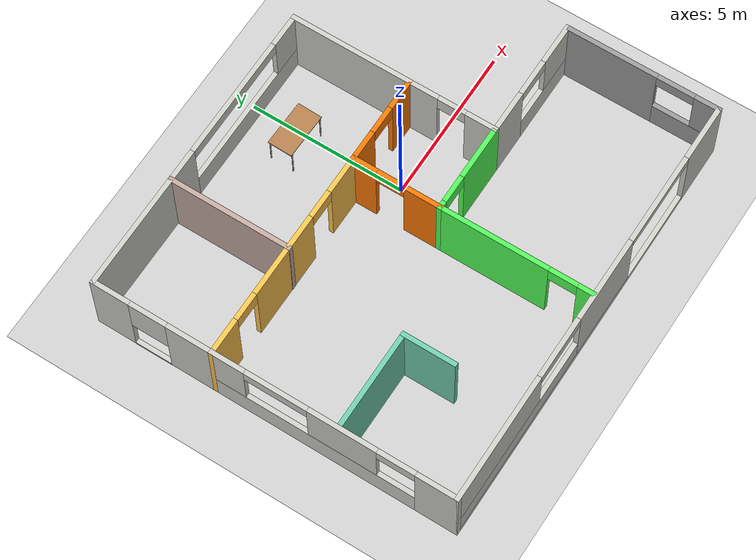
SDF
<sdf version="1.6">
 <world name="default">
  <model name="ground_plane">
   <static>1</static>
   <link name="link">
    <collision name="collision">
     <geometry><plane><normal>0 0 1</normal><size>100 100</size></plane></geometry>
     <surface>
      <contact><collide_bitmask>65535</collide_bitmask></contact>
      <friction><ode><mu>100</mu><mu2>50</mu2></ode></friction>
     </surface>
    </collision>
    <visual name="visual">
     <cast_shadows>0</cast_shadows>
     <geometry><plane><normal>0 0 1</normal><size>100 100</size></plane></geometry>
     <material>
      <script><uri>file://media/materials/scripts/gazebo.material</uri><name>Gazebo/Grey</name></script>
     </material>
    </visual>
   </link>
  </model>
  <model name="Apartment">
   <pose>-1.01508 -0.975573 0 0 -0 0</pose>
   <link name="Wall_11">
    <pose>1.52493 1.92485 0 0 -0 0</pose>
    <visual name="Wall_11_Visual_0">
     <pose>-0.9825 0 1.25 0 -0 0</pose>
     <geometry><box><size>1.035 0.15 2.5</size></box></geometry>
     <material>
      <script><uri>file://media/materials/scripts/gazebo.material</uri><name>Gazebo/Grey</name></script>
      <ambient>0.996078 0.47451 0.0196078 1</ambient>
     </material>
     <meta><layer>0</layer></meta>
    </visual>
    <collision name="Wall_11_Collision_0">
     <geometry><box><size>1.035 0.15 2.5</size></box></geometry>
     <pose>-0.9825 0 1.25 0 -0 0</pose>
    </collision>
    <visual name="Wall_11_Visual_1">
     <pose>0.9675 0 1.25 0 -0 0</pose>
     <geometry><box><size>1.065 0.15 2.5</size></box></geometry>
     <material>
      <script><uri>file://media/materials/scripts/gazebo.material</uri><name>Gazebo/Grey</name></script>
      <ambient>0.996078 0.47451 0.0196078 1</ambient>
     </material>
     <meta><layer>0</layer></meta>
    </visual>
    <collision name="Wall_11_Collision_1">
     <geometry><box><size>1.065 0.15 2.5</size></box></geometry>
     <pose>0.9675 0 1.25 0 -0 0</pose>
    </collision>
    <visual name="Wall_11_Visual_2">
     <pose>-0.015 0 2.25 0 -0 0</pose>
     <geometry><box><size>0.9 0.15 0.5</size></box></geometry>
     <material>
      <script><uri>file://media/materials/scripts/gazebo.material</uri><name>Gazebo/Grey</name></script>
      <ambient>0.996078 0.47451 0.0196078 1</ambient>
     </material>
     <meta><layer>0</layer></meta>
    </visual>
    <collision name="Wall_11_Collision_2">
     <geometry><box><size>0.9 0.15 0.5</size></box></geometry>
     <pose>-0.015 0 2.25 0 -0 0</pose>
    </collision>
   </link>
   <link name="Wall_12">
    <pose>2.94993 0.519847 0 0 0 -1.5708</pose>
    <visual name="Wall_12_Visual_0">
     <pose>-0.962535 0 1.25 0 -0 0</pose>
     <geometry><box><size>1.03493 0.15 2.5</size></box></geometry>
     <material>
      <script><uri>file://media/materials/scripts/gazebo.material</uri><name>Gazebo/CeilingTiled</name></script>
      <ambient>1 1 1 1</ambient>
     </material>
     <meta><layer>0</layer></meta>
    </visual>
    <collision name="Wall_12_Collision_0">
     <geometry><box><size>1.03493 0.15 2.5</size></box></geometry>
     <pose>-0.962535 0 1.25 0 -0 0</pose>
    </collision>
    <visual name="Wall_12_Visual_1">
     <pose>0.967465 0 1.25 0 -0 0</pose>
     <geometry><box><size>1.02507 0.15 2.5</size></box></geometry>
     <material>
      <script><uri>file://media/materials/scripts/gazebo.material</uri><name>Gazebo/CeilingTiled</name></script>
      <ambient>1 1 1 1</ambient>
     </material>
     <meta><layer>0</layer></meta>
    </visual>
    <collision name="Wall_12_Collision_1">
     <geometry><box><size>1.02507 0.15 2.5</size></box></geometry>
     <pose>0.967465 0 1.25 0 -0 0</pose>
    </collision>
    <visual name="Wall_12_Visual_2">
     <pose>0.00493 0 2.25 0 -0 0</pose>
     <geometry><box><size>0.9 0.15 0.5</size></box></geometry>
     <material>
      <script><uri>file://media/materials/scripts/gazebo.material</uri><name>Gazebo/CeilingTiled</name></script>
      <ambient>1 1 1 1</ambient>
     </material>
     <meta><layer>0</layer></meta>
    </visual>
    <collision name="Wall_12_Collision_2">
     <geometry><box><size>0.9 0.15 0.5</size></box></geometry>
     <pose>0.00493 0 2.25 0 -0 0</pose>
    </collision>
   </link>
   <link name="Wall_13">
    <pose>1.52493 -0.885153 0 0 -0 3.14159</pose>
    <visual name="Wall_13_Visual_0">
     <pose>-0.592536 0 1.25 0 -0 0</pose>
     <geometry><box><size>1.81507 0.15 2.5</size></box></geometry>
     <material>
      <script><uri>file://media/materials/scripts/gazebo.material</uri><name>Gazebo/Grey</name></script>
      <ambient>0.321569 1 0.345098 1</ambient>
     </material>
     <meta><layer>0</layer></meta>
    </visual>
    <collision name="Wall_13_Collision_0">
     <geometry><box><size>1.81507 0.15 2.5</size></box></geometry>
     <pose>-0.592536 0 1.25 0 -0 0</pose>
    </collision>
    <visual name="Wall_13_Visual_1">
     <pose>1.35754 0 1.25 0 -0 0</pose>
     <geometry><box><size>0.285073 0.15 2.5</size></box></geometry>
     <material>
      <script><uri>file://media/materials/scripts/gazebo.material</uri><name>Gazebo/Grey</name></script>
      <ambient>0.321569 1 0.345098 1</ambient>
     </material>
     <meta><layer>0</layer></meta>
    </visual>
    <collision name="Wall_13_Collision_1">
     <geometry><box><size>0.285073 0.15 2.5</size></box></geometry>
     <pose>1.35754 0 1.25 0 -0 0</pose>
    </collision>
    <visual name="Wall_13_Visual_2">
     <pose>0.765 0 2.25 0 -0 0</pose>
     <geometry><box><size>0.9 0.15 0.5</size></box></geometry>
     <material>
      <script><uri>file://media/materials/scripts/gazebo.material</uri><name>Gazebo/Grey</name></script>
      <ambient>0.321569 1 0.345098 1</ambient>
     </material>
     <meta><layer>0</layer></meta>
    </visual>
    <collision name="Wall_13_Collision_2">
     <geometry><box><size>0.9 0.15 0.5</size></box></geometry>
     <pose>0.765 0 2.25 0 -0 0</pose>
    </collision>
   </link>
   <link name="Wall_14">
    <pose>0.099928 0.519847 0 0 -0 1.5708</pose>
    <visual name="Wall_14_Visual_0">
     <pose>-0.8739 0 1.25 0 -0 0</pose>
     <geometry><box><size>1.21261 0.15 2.5</size></box></geometry>
     <material>
      <script><uri>file://media/materials/scripts/gazebo.material</uri><name>Gazebo/Grey</name></script>
      <ambient>0.996078 0.47451 0.0196078 1</ambient>
     </material>
     <meta><layer>0</layer></meta>
    </visual>
    <collision name="Wall_14_Collision_0">
     <geometry><box><size>1.21261 0.15 2.5</size></box></geometry>
     <pose>-0.8739 0 1.25 0 -0 0</pose>
    </collision>
    <visual name="Wall_14_Visual_1">
     <pose>1.0563 0 1.25 0 -0 0</pose>
     <geometry><box><size>0.847799 0.15 2.5</size></box></geometry>
     <material>
      <script><uri>file://media/materials/scripts/gazebo.material</uri><name>Gazebo/Grey</name></script>
      <ambient>0.996078 0.47451 0.0196078 1</ambient>
     </material>
     <meta><layer>0</layer></meta>
    </visual>
    <collision name="Wall_14_Collision_1">
     <geometry><box><size>0.847799 0.15 2.5</size></box></geometry>
     <pose>1.0563 0 1.25 0 -0 0</pose>
    </collision>
    <visual name="Wall_14_Visual_2">
     <pose>0.182404 0 2.25 0 -0 0</pose>
     <geometry><box><size>0.9 0.15 0.5</size></box></geometry>
     <material>
      <script><uri>file://media/materials/scripts/gazebo.material</uri><name>Gazebo/Grey</name></script>
      <ambient>0.996078 0.47451 0.0196078 1</ambient>
     </material>
     <meta><layer>0</layer></meta>
    </visual>
    <collision name="Wall_14_Collision_2">
     <geometry><box><size>0.9 0.15 0.5</size></box></geometry>
     <pose>0.182404 0 2.25 0 -0 0</pose>
    </collision>
   </link>
   <link name="Wall_16">
    <pose>4.87493 -0.885153 0 0 -0 0</pose>
    <visual name="Wall_16_Visual_0">
     <pose>-1.29069 0 1.25 0 -0 0</pose>
     <geometry><box><size>1.41862 0.15 2.5</size></box></geometry>
     <material>
      <script><uri>file://media/materials/scripts/gazebo.material</uri><name>Gazebo/CeilingTiled</name></script>
      <ambient>0.760784 0.662745 0.627451 1</ambient>
     </material>
     <meta><layer>0</layer></meta>
    </visual>
    <collision name="Wall_16_Collision_0">
     <geometry><box><size>1.41862 0.15 2.5</size></box></geometry>
     <pose>-1.29069 0 1.25 0 -0 0</pose>
    </collision>
    <visual name="Wall_16_Visual_1">
     <pose>0.709309 0 0.45 0 -0 0</pose>
     <geometry><box><size>2.58138 0.15 0.9</size></box></geometry>
     <material>
      <script><uri>file://media/materials/scripts/gazebo.material</uri><name>Gazebo/CeilingTiled</name></script>
      <ambient>0.760784 0.662745 0.627451 1</ambient>
     </material>
     <meta><layer>0</layer></meta>
    </visual>
    <collision name="Wall_16_Collision_1">
     <geometry><box><size>2.58138 0.15 0.9</size></box></geometry>
     <pose>0.709309 0 0.45 0 -0 0</pose>
    </collision>
    <visual name="Wall_16_Visual_2">
     <pose>1.30931 0 1.7 0 -0 0</pose>
     <geometry><box><size>1.38138 0.15 1.6</size></box></geometry>
     <material>
      <script><uri>file://media/materials/scripts/gazebo.material</uri><name>Gazebo/CeilingTiled</name></script>
      <ambient>0.760784 0.662745 0.627451 1</ambient>
     </material>
     <meta><layer>0</layer></meta>
    </visual>
    <collision name="Wall_16_Collision_2">
     <geometry><box><size>1.38138 0.15 1.6</size></box></geometry>
     <pose>1.30931 0 1.7 0 -0 0</pose>
    </collision>
    <visual name="Wall_16_Visual_3">
     <pose>0.018619 0 2.3 0 -0 0</pose>
     <geometry><box><size>1.2 0.15 0.4</size></box></geometry>
     <material>
      <script><uri>file://media/materials/scripts/gazebo.material</uri><name>Gazebo/CeilingTiled</name></script>
      <ambient>0.760784 0.662745 0.627451 1</ambient>
     </material>
     <meta><layer>0</layer></meta>
    </visual>
    <collision name="Wall_16_Collision_3">
     <geometry><box><size>1.2 0.15 0.4</size></box></geometry>
     <pose>0.018619 0 2.3 0 -0 0</pose>
    </collision>
   </link>
   <link name="Wall_18">
    <pose>6.80018 -3.33 0 0 0 -1.57069</pose>
    <visual name="Wall_18_Visual_0">
     <pose>-1.01487 0 1.25 0 -0 0</pose>
     <geometry><box><size>3.00995 0.15 2.5</size></box></geometry>
     <material>
      <script><uri>file://media/materials/scripts/gazebo.material</uri><name>Gazebo/Grey</name></script>
      <ambient>1 1 1 1</ambient>
     </material>
     <meta><layer>0</layer></meta>
    </visual>
    <collision name="Wall_18_Collision_0">
     <geometry><box><size>3.00995 0.15 2.5</size></box></geometry>
     <pose>-1.01487 0 1.25 0 -0 0</pose>
    </collision>
    <visual name="Wall_18_Visual_1">
     <pose>1.50497 0 0.45 0 -0 0</pose>
     <geometry><box><size>2.02974 0.15 0.9</size></box></geometry>
     <material>
      <script><uri>file://media/materials/scripts/gazebo.material</uri><name>Gazebo/Grey</name></script>
      <ambient>1 1 1 1</ambient>
     </material>
     <meta><layer>0</layer></meta>
    </visual>
    <collision name="Wall_18_Collision_1">
     <geometry><box><size>2.02974 0.15 0.9</size></box></geometry>
     <pose>1.50497 0 0.45 0 -0 0</pose>
    </collision>
    <visual name="Wall_18_Visual_2">
     <pose>2.10497 0 1.7 0 -0 0</pose>
     <geometry><box><size>0.829741 0.15 1.6</size></box></geometry>
     <material>
      <script><uri>file://media/materials/scripts/gazebo.material</uri><name>Gazebo/Grey</name></script>
      <ambient>1 1 1 1</ambient>
     </material>
     <meta><layer>0</layer></meta>
    </visual>
    <collision name="Wall_18_Collision_2">
     <geometry><box><size>0.829741 0.15 1.6</size></box></geometry>
     <pose>2.10497 0 1.7 0 -0 0</pose>
    </collision>
    <visual name="Wall_18_Visual_3">
     <pose>1.0901 0 2.3 0 -0 0</pose>
     <geometry><box><size>1.2 0.15 0.4</size></box></geometry>
     <material>
      <script><uri>file://media/materials/scripts/gazebo.material</uri><name>Gazebo/Grey</name></script>
      <ambient>1 1 1 1</ambient>
     </material>
     <meta><layer>0</layer></meta>
    </visual>
    <collision name="Wall_18_Collision_3">
     <geometry><box><size>1.2 0.15 0.4</size></box></geometry>
     <pose>1.0901 0 2.3 0 -0 0</pose>
    </collision>
   </link>
   <link name="Wall_19">
    <pose>0.000427 -5.77484 0 0 -0 3.14159</pose>
    <visual name="Wall_19_Visual_0">
     <pose>-5.94597 0 1.25 0 -0 0</pose>
     <geometry><box><size>1.85806 0.15 2.5</size></box></geometry>
     <material>
      <script><uri>file://media/materials/scripts/gazebo.material</uri><name>Gazebo/CeilingTiled</name></script>
      <ambient>1 1 1 1</ambient>
     </material>
     <meta><layer>0</layer></meta>
    </visual>
    <collision name="Wall_19_Collision_0">
     <geometry><box><size>1.85806 0.15 2.5</size></box></geometry>
     <pose>-5.94597 0 1.25 0 -0 0</pose>
    </collision>
    <visual name="Wall_19_Visual_1">
     <pose>0.929031 0 0.1 0 -0 0</pose>
     <geometry><box><size>11.8919 0.15 0.2</size></box></geometry>
     <material>
      <script><uri>file://media/materials/scripts/gazebo.material</uri><name>Gazebo/CeilingTiled</name></script>
      <ambient>1 1 1 1</ambient>
     </material>
     <meta><layer>0</layer></meta>
    </visual>
    <collision name="Wall_19_Collision_1">
     <geometry><box><size>11.8919 0.15 0.2</size></box></geometry>
     <pose>0.929031 0 0.1 0 -0 0</pose>
    </collision>
    <visual name="Wall_19_Visual_2">
     <pose>-0.643119 0 1.35 0 -0 0</pose>
     <geometry><box><size>2.74764 0.15 2.3</size></box></geometry>
     <material>
      <script><uri>file://media/materials/scripts/gazebo.material</uri><name>Gazebo/CeilingTiled</name></script>
      <ambient>1 1 1 1</ambient>
     </material>
     <meta><layer>0</layer></meta>
    </visual>
    <collision name="Wall_19_Collision_2">
     <geometry><box><size>2.74764 0.15 2.3</size></box></geometry>
     <pose>-0.643119 0 1.35 0 -0 0</pose>
    </collision>
    <visual name="Wall_19_Visual_3">
     <pose>3.80285 0 0.55 0 -0 0</pose>
     <geometry><box><size>6.1443 0.15 0.7</size></box></geometry>
     <material>
      <script><uri>file://media/materials/scripts/gazebo.material</uri><name>Gazebo/CeilingTiled</name></script>
      <ambient>1 1 1 1</ambient>
     </material>
     <meta><layer>0</layer></meta>
    </visual>
    <collision name="Wall_19_Collision_3">
     <geometry><box><size>6.1443 0.15 0.7</size></box></geometry>
     <pose>3.80285 0 0.55 0 -0 0</pose>
    </collision>
    <visual name="Wall_19_Visual_4">
     <pose>4.80285 0 1.7 0 -0 0</pose>
     <geometry><box><size>4.1443 0.15 1.6</size></box></geometry>
     <material>
      <script><uri>file://media/materials/scripts/gazebo.material</uri><name>Gazebo/CeilingTiled</name></script>
      <ambient>1 1 1 1</ambient>
     </material>
     <meta><layer>0</layer></meta>
    </visual>
    <collision name="Wall_19_Collision_4">
     <geometry><box><size>4.1443 0.15 1.6</size></box></geometry>
     <pose>4.80285 0 1.7 0 -0 0</pose>
    </collision>
    <visual name="Wall_19_Visual_5">
     <pose>1.7307 0 2.3 0 -0 0</pose>
     <geometry><box><size>2 0.15 0.4</size></box></geometry>
     <material>
      <script><uri>file://media/materials/scripts/gazebo.material</uri><name>Gazebo/CeilingTiled</name></script>
      <ambient>1 1 1 1</ambient>
     </material>
     <meta><layer>0</layer></meta>
    </visual>
    <collision name="Wall_19_Collision_5">
     <geometry><box><size>2 0.15 0.4</size></box></geometry>
     <pose>1.7307 0 2.3 0 -0 0</pose>
    </collision>
    <visual name="Wall_19_Visual_6">
     <pose>-3.51694 0 2.35 0 -0 0</pose>
     <geometry><box><size>3 0.15 0.3</size></box></geometry>
     <material>
      <script><uri>file://media/materials/scripts/gazebo.material</uri><name>Gazebo/CeilingTiled</name></script>
      <ambient>1 1 1 1</ambient>
     </material>
     <meta><layer>0</layer></meta>
    </visual>
    <collision name="Wall_19_Collision_6">
     <geometry><box><size>3 0.15 0.3</size></box></geometry>
     <pose>-3.51694 0 2.35 0 -0 0</pose>
    </collision>
   </link>
   <link name="Wall_20">
    <pose>-6.79982 -1.925 0 0 -0 1.57086</pose>
    <visual name="Wall_20_Visual_0">
     <pose>-3.25093 0 1.25 0 -0 0</pose>
     <geometry><box><size>1.34782 0.15 2.5</size></box></geometry>
     <material>
      <script><uri>file://media/materials/scripts/gazebo.material</uri><name>Gazebo/CeilingTiled</name></script>
      <ambient>1 1 1 1</ambient>
     </material>
     <meta><layer>0</layer></meta>
    </visual>
    <collision name="Wall_20_Collision_0">
     <geometry><box><size>1.34782 0.15 2.5</size></box></geometry>
     <pose>-3.25093 0 1.25 0 -0 0</pose>
    </collision>
    <visual name="Wall_20_Visual_1">
     <pose>0.67391 0 0.45 0 -0 0</pose>
     <geometry><box><size>6.50187 0.15 0.9</size></box></geometry>
     <material>
      <script><uri>file://media/materials/scripts/gazebo.material</uri><name>Gazebo/CeilingTiled</name></script>
      <ambient>1 1 1 1</ambient>
     </material>
     <meta><layer>0</layer></meta>
    </visual>
    <collision name="Wall_20_Collision_1">
     <geometry><box><size>6.50187 0.15 0.9</size></box></geometry>
     <pose>0.67391 0 0.45 0 -0 0</pose>
    </collision>
    <visual name="Wall_20_Visual_2">
     <pose>-0.288611 0 1.7 0 -0 0</pose>
     <geometry><box><size>2.17682 0.15 1.6</size></box></geometry>
     <material>
      <script><uri>file://media/materials/scripts/gazebo.material</uri><name>Gazebo/CeilingTiled</name></script>
      <ambient>1 1 1 1</ambient>
     </material>
     <meta><layer>0</layer></meta>
    </visual>
    <collision name="Wall_20_Collision_2">
     <geometry><box><size>2.17682 0.15 1.6</size></box></geometry>
     <pose>-0.288611 0 1.7 0 -0 0</pose>
    </collision>
    <visual name="Wall_20_Visual_3">
     <pose>3.36232 0 1.7 0 -0 0</pose>
     <geometry><box><size>1.12504 0.15 1.6</size></box></geometry>
     <material>
      <script><uri>file://media/materials/scripts/gazebo.material</uri><name>Gazebo/CeilingTiled</name></script>
      <ambient>1 1 1 1</ambient>
     </material>
     <meta><layer>0</layer></meta>
    </visual>
    <collision name="Wall_20_Collision_3">
     <geometry><box><size>1.12504 0.15 1.6</size></box></geometry>
     <pose>3.36232 0 1.7 0 -0 0</pose>
    </collision>
    <visual name="Wall_20_Visual_4">
     <pose>-1.97702 0 2.3 0 -0 0</pose>
     <geometry><box><size>1.2 0.15 0.4</size></box></geometry>
     <material>
      <script><uri>file://media/materials/scripts/gazebo.material</uri><name>Gazebo/CeilingTiled</name></script>
      <ambient>1 1 1 1</ambient>
     </material>
     <meta><layer>0</layer></meta>
    </visual>
    <collision name="Wall_20_Collision_4">
     <geometry><box><size>1.2 0.15 0.4</size></box></geometry>
     <pose>-1.97702 0 2.3 0 -0 0</pose>
    </collision>
    <visual name="Wall_20_Visual_5">
     <pose>1.7998 0 2.3 0 -0 0</pose>
     <geometry><box><size>2 0.15 0.4</size></box></geometry>
     <material>
      <script><uri>file://media/materials/scripts/gazebo.material</uri><name>Gazebo/CeilingTiled</name></script>
      <ambient>1 1 1 1</ambient>
     </material>
     <meta><layer>0</layer></meta>
    </visual>
    <collision name="Wall_20_Collision_5">
     <geometry><box><size>2 0.15 0.4</size></box></geometry>
     <pose>1.7998 0 2.3 0 -0 0</pose>
    </collision>
   </link>
   <link name="Wall_21">
    <pose>-3.35007 1.92485 0 0 -0 0</pose>
    <visual name="Wall_21_Visual_0">
     <pose>-2.92004 0 1.25 0 -0 0</pose>
     <geometry><box><size>1.21065 0.15 2.5</size></box></geometry>
     <material>
      <script><uri>file://media/materials/scripts/gazebo.material</uri><name>Gazebo/Grey</name></script>
      <ambient>1 0.764706 0.305882 1</ambient>
     </material>
     <meta><layer>0</layer></meta>
    </visual>
    <collision name="Wall_21_Collision_0">
     <geometry><box><size>1.21065 0.15 2.5</size></box></geometry>
     <pose>-2.92004 0 1.25 0 -0 0</pose>
    </collision>
    <visual name="Wall_21_Visual_1">
     <pose>-0.045749 0 1.25 0 -0 0</pose>
     <geometry><box><size>2.73793 0.15 2.5</size></box></geometry>
     <material>
      <script><uri>file://media/materials/scripts/gazebo.material</uri><name>Gazebo/Grey</name></script>
      <ambient>1 0.764706 0.305882 1</ambient>
     </material>
     <meta><layer>0</layer></meta>
    </visual>
    <collision name="Wall_21_Collision_1">
     <geometry><box><size>2.73793 0.15 2.5</size></box></geometry>
     <pose>-0.045749 0 1.25 0 -0 0</pose>
    </collision>
    <visual name="Wall_21_Visual_2">
     <pose>2.87429 0 1.25 0 -0 0</pose>
     <geometry><box><size>1.30214 0.15 2.5</size></box></geometry>
     <material>
      <script><uri>file://media/materials/scripts/gazebo.material</uri><name>Gazebo/Grey</name></script>
      <ambient>1 0.764706 0.305882 1</ambient>
     </material>
     <meta><layer>0</layer></meta>
    </visual>
    <collision name="Wall_21_Collision_2">
     <geometry><box><size>1.30214 0.15 2.5</size></box></geometry>
     <pose>2.87429 0 1.25 0 -0 0</pose>
    </collision>
    <visual name="Wall_21_Visual_3">
     <pose>-1.86471 0 2.25 0 -0 0</pose>
     <geometry><box><size>0.9 0.15 0.5</size></box></geometry>
     <material>
      <script><uri>file://media/materials/scripts/gazebo.material</uri><name>Gazebo/Grey</name></script>
      <ambient>1 0.764706 0.305882 1</ambient>
     </material>
     <meta><layer>0</layer></meta>
    </visual>
    <collision name="Wall_21_Collision_3">
     <geometry><box><size>0.9 0.15 0.5</size></box></geometry>
     <pose>-1.86471 0 2.25 0 -0 0</pose>
    </collision>
    <visual name="Wall_21_Visual_4">
     <pose>1.77322 0 2.25 0 -0 0</pose>
     <geometry><box><size>0.9 0.15 0.5</size></box></geometry>
     <material>
      <script><uri>file://media/materials/scripts/gazebo.material</uri><name>Gazebo/Grey</name></script>
      <ambient>1 0.764706 0.305882 1</ambient>
     </material>
     <meta><layer>0</layer></meta>
    </visual>
    <collision name="Wall_21_Collision_4">
     <geometry><box><size>0.9 0.15 0.5</size></box></geometry>
     <pose>1.77322 0 2.25 0 -0 0</pose>
    </collision>
   </link>
   <link name="Wall_23">
    <pose>-6.80007 3.84985 0 0 -0 1.5708</pose>
    <visual name="Wall_23_Visual_0">
     <pose>-1.23081 0 1.25 0 -0 0</pose>
     <geometry><box><size>1.53838 0.15 2.5</size></box></geometry>
     <material>
      <script><uri>file://media/materials/scripts/gazebo.material</uri><name>Gazebo/CeilingTiled</name></script>
      <ambient>1 1 1 1</ambient>
     </material>
     <meta><layer>0</layer></meta>
    </visual>
    <collision name="Wall_23_Collision_0">
     <geometry><box><size>1.53838 0.15 2.5</size></box></geometry>
     <pose>-1.23081 0 1.25 0 -0 0</pose>
    </collision>
    <visual name="Wall_23_Visual_1">
     <pose>1.36919 0 1.25 0 -0 0</pose>
     <geometry><box><size>1.26162 0.15 2.5</size></box></geometry>
     <material>
      <script><uri>file://media/materials/scripts/gazebo.material</uri><name>Gazebo/CeilingTiled</name></script>
      <ambient>1 1 1 1</ambient>
     </material>
     <meta><layer>0</layer></meta>
    </visual>
    <collision name="Wall_23_Collision_1">
     <geometry><box><size>1.26162 0.15 2.5</size></box></geometry>
     <pose>1.36919 0 1.25 0 -0 0</pose>
    </collision>
    <visual name="Wall_23_Visual_2">
     <pose>0.138378 0 0 0 -0 0</pose>
     <geometry><box><size>1.2 0.15 0.1</size></box></geometry>
     <material>
      <script><uri>file://media/materials/scripts/gazebo.material</uri><name>Gazebo/CeilingTiled</name></script>
      <ambient>1 1 1 1</ambient>
     </material>
     <meta><layer>0</layer></meta>
    </visual>
    <collision name="Wall_23_Collision_2">
     <geometry><box><size>1.2 0.15 0.1</size></box></geometry>
     <pose>0.138378 0 0 0 -0 0</pose>
    </collision>
    <visual name="Wall_23_Visual_3">
     <pose>0.138378 0 1.85 0 -0 0</pose>
     <geometry><box><size>1.2 0.15 1.3</size></box></geometry>
     <material>
      <script><uri>file://media/materials/scripts/gazebo.material</uri><name>Gazebo/CeilingTiled</name></script>
      <ambient>1 1 1 1</ambient>
     </material>
     <meta><layer>0</layer></meta>
    </visual>
    <collision name="Wall_23_Collision_3">
     <geometry><box><size>1.2 0.15 1.3</size></box></geometry>
     <pose>0.138378 0 1.85 0 -0 0</pose>
    </collision>
   </link>
   <link name="Wall_24">
    <pose>-1.92507 5.77485 0 0 -0 0</pose>
    <visual name="Wall_24_Visual_0">
     <pose>-2.56096 0 1.25 0 -0 0</pose>
     <geometry><box><size>4.77807 0.15 2.5</size></box></geometry>
     <material>
      <script><uri>file://media/materials/scripts/gazebo.material</uri><name>Gazebo/CeilingTiled</name></script>
      <ambient>1 1 1 1</ambient>
     </material>
     <meta><layer>0</layer></meta>
    </visual>
    <collision name="Wall_24_Collision_0">
     <geometry><box><size>4.77807 0.15 2.5</size></box></geometry>
     <pose>-2.56096 0 1.25 0 -0 0</pose>
    </collision>
    <visual name="Wall_24_Visual_1">
     <pose>2.38903 0 0.45 0 -0 0</pose>
     <geometry><box><size>5.12193 0.15 0.9</size></box></geometry>
     <material>
      <script><uri>file://media/materials/scripts/gazebo.material</uri><name>Gazebo/CeilingTiled</name></script>
      <ambient>1 1 1 1</ambient>
     </material>
     <meta><layer>0</layer></meta>
    </visual>
    <collision name="Wall_24_Collision_1">
     <geometry><box><size>5.12193 0.15 0.9</size></box></geometry>
     <pose>2.38903 0 0.45 0 -0 0</pose>
    </collision>
    <visual name="Wall_24_Visual_2">
     <pose>4.38903 0 1.7 0 -0 0</pose>
     <geometry><box><size>1.12193 0.15 1.6</size></box></geometry>
     <material>
      <script><uri>file://media/materials/scripts/gazebo.material</uri><name>Gazebo/CeilingTiled</name></script>
      <ambient>1 1 1 1</ambient>
     </material>
     <meta><layer>0</layer></meta>
    </visual>
    <collision name="Wall_24_Collision_2">
     <geometry><box><size>1.12193 0.15 1.6</size></box></geometry>
     <pose>4.38903 0 1.7 0 -0 0</pose>
    </collision>
    <visual name="Wall_24_Visual_3">
     <pose>1.82807 0 2.3 0 -0 0</pose>
     <geometry><box><size>4 0.15 0.4</size></box></geometry>
     <material>
      <script><uri>file://media/materials/scripts/gazebo.material</uri><name>Gazebo/CeilingTiled</name></script>
      <ambient>1 1 1 1</ambient>
     </material>
     <meta><layer>0</layer></meta>
    </visual>
    <collision name="Wall_24_Collision_3">
     <geometry><box><size>4 0.15 0.4</size></box></geometry>
     <pose>1.82807 0 2.3 0 -0 0</pose>
    </collision>
   </link>
   <link name="Wall_25">
    <collision name="Wall_25_Collision">
     <geometry><box><size>3.99969 0.15 2.5</size></box></geometry>
     <pose>0 0 1.25 0 -0 0</pose>
    </collision>
    <visual name="Wall_25_Visual">
     <pose>0 0 1.25 0 -0 0</pose>
     <geometry><box><size>3.99969 0.15 2.5</size></box></geometry>
     <material>
      <script><uri>file://media/materials/scripts/gazebo.material</uri><name>Gazebo/CeilingTiled</name></script>
      <ambient>1 1 1 1</ambient>
     </material>
     <meta><layer>0</layer></meta>
    </visual>
    <pose>2.94993 3.84985 0 0 0 -1.5708</pose>
   </link>
   <link name="Wall_27">
    <collision name="Wall_27_Collision">
     <geometry><box><size>4 0.15 2.5</size></box></geometry>
     <pose>0 0 1.25 0 -0 0</pose>
    </collision>
    <visual name="Wall_27_Visual">
     <pose>0 0 1.25 0 -0 0</pose>
     <geometry><box><size>4 0.15 2.5</size></box></geometry>
     <material>
      <script><uri>file://media/materials/scripts/gazebo.material</uri><name>Gazebo/Grey</name></script>
      <ambient>0.760784 0.662745 0.627451 1</ambient>
     </material>
     <meta><layer>0</layer></meta>
    </visual>
    <pose>-3.13347 3.83972 0 0 -0 1.5708</pose>
   </link>
   <link name="Wall_31">
    <pose>0.099928 -3.31015 0 0 0 -1.5708</pose>
    <visual name="Wall_31_Visual_0">
     <pose>-0.723829 0 1.25 0 -0 0</pose>
     <geometry><box><size>3.55234 0.15 2.5</size></box></geometry>
     <material>
      <script><uri>file://media/materials/scripts/gazebo.material</uri><name>Gazebo/Grey</name></script>
      <ambient>0.321569 1 0.345098 1</ambient>
     </material>
     <meta><layer>0</layer></meta>
    </visual>
    <collision name="Wall_31_Collision_0">
     <geometry><box><size>3.55234 0.15 2.5</size></box></geometry>
     <pose>-0.723829 0 1.25 0 -0 0</pose>
    </collision>
    <visual name="Wall_31_Visual_1">
     <pose>2.22617 0 1.25 0 -0 0</pose>
     <geometry><box><size>0.547658 0.15 2.5</size></box></geometry>
     <material>
      <script><uri>file://media/materials/scripts/gazebo.material</uri><name>Gazebo/Grey</name></script>
      <ambient>0.321569 1 0.345098 1</ambient>
     </material>
     <meta><layer>0</layer></meta>
    </visual>
    <collision name="Wall_31_Collision_1">
     <geometry><box><size>0.547658 0.15 2.5</size></box></geometry>
     <pose>2.22617 0 1.25 0 -0 0</pose>
    </collision>
    <visual name="Wall_31_Visual_2">
     <pose>1.50234 0 2.25 0 -0 0</pose>
     <geometry><box><size>0.9 0.15 0.5</size></box></geometry>
     <material>
      <script><uri>file://media/materials/scripts/gazebo.material</uri><name>Gazebo/Grey</name></script>
      <ambient>0.321569 1 0.345098 1</ambient>
     </material>
     <meta><layer>0</layer></meta>
    </visual>
    <collision name="Wall_31_Collision_2">
     <geometry><box><size>0.9 0.15 0.5</size></box></geometry>
     <pose>1.50234 0 2.25 0 -0 0</pose>
    </collision>
   </link>
   <link name="Wall_35">
    <collision name="Wall_35_Collision">
     <geometry><box><size>3.25 0.15 2.5</size></box></geometry>
     <pose>0 0 1.25 0 -0 0</pose>
    </collision>
    <visual name="Wall_35_Visual">
     <pose>0 0 1.25 0 -0 0</pose>
     <geometry><box><size>3.25 0.15 2.5</size></box></geometry>
     <material>
      <script><uri>file://media/materials/scripts/gazebo.material</uri><name>Gazebo/Grey</name></script>
      <ambient>0.435294 0.796078 0.67451 1</ambient>
     </material>
     <meta><layer>0</layer></meta>
    </visual>
    <pose>-5.17735 -2.08457 0 0 -0 0</pose>
   </link>
   <link name="Wall_36">
    <collision name="Wall_36_Collision">
     <geometry><box><size>1.75 0.15 2.5</size></box></geometry>
     <pose>0 0 1.25 0 -0 0</pose>
    </collision>
    <visual name="Wall_36_Visual">
     <pose>0 0 1.25 0 -0 0</pose>
     <geometry><box><size>1.75 0.15 2.5</size></box></geometry>
     <material>
      <script><uri>file://media/materials/scripts/gazebo.material</uri><name>Gazebo/Grey</name></script>
      <ambient>0.435294 0.796078 0.67451 1</ambient>
     </material>
     <meta><layer>0</layer></meta>
    </visual>
    <pose>-3.62735 -2.88457 0 0 0 -1.5708</pose>
   </link>
   <static>1</static>
  </model>
  <model name="table_clone">
   <static>1</static>
   <link name="link">
    <collision name="surface">
     <pose>0 0 1 0 -0 0</pose>
     <geometry><box><size>1.5 0.8 0.03</size></box></geometry>
     <surface><friction><ode><mu>0.6</mu><mu2>0.6</mu2></ode></friction></surface>
    </collision>
    <visual name="visual1">
     <pose>0 0 1 0 -0 0</pose>
     <geometry><box><size>1.5 0.8 0.03</size></box></geometry>
     <material>
      <script><uri>file://media/materials/scripts/gazebo.material</uri><name>Gazebo/Wood</name></script>
     </material>
    </visual>
    <collision name="front_left_leg">
     <pose>0.68 0.38 0.5 0 -0 0</pose>
     <geometry><cylinder><radius>0.02</radius><length>1</length></cylinder></geometry>
    </collision>
    <visual name="front_left_leg">
     <pose>0.68 0.38 0.5 0 -0 0</pose>
     <geometry><cylinder><radius>0.02</radius><length>1</length></cylinder></geometry>
     <material>
      <script><uri>file://media/materials/scripts/gazebo.material</uri><name>Gazebo/Grey</name></script>
     </material>
    </visual>
    <collision name="front_right_leg">
     <pose>0.68 -0.38 0.5 0 -0 0</pose>
     <geometry><cylinder><radius>0.02</radius><length>1</length></cylinder></geometry>
    </collision>
    <visual name="front_right_leg">
     <pose>0.68 -0.38 0.5 0 -0 0</pose>
     <geometry><cylinder><radius>0.02</radius><length>1</length></cylinder></geometry>
     <material>
      <script><uri>file://media/materials/scripts/gazebo.material</uri><name>Gazebo/Grey</name></script>
     </material>
    </visual>
    <collision name="back_right_leg">
     <pose>-0.68 -0.38 0.5 0 -0 0</pose>
     <geometry><cylinder><radius>0.02</radius><length>1</length></cylinder></geometry>
    </collision>
    <visual name="back_right_leg">
     <pose>-0.68 -0.38 0.5 0 -0 0</pose>
     <geometry><cylinder><radius>0.02</radius><length>1</length></cylinder></geometry>
     <material>
      <script><uri>file://media/materials/scripts/gazebo.material</uri><name>Gazebo/Grey</name></script>
     </material>
    </visual>
    <collision name="back_left_leg">
     <pose>-0.68 0.38 0.5 0 -0 0</pose>
     <geometry><cylinder><radius>0.02</radius><length>1</length></cylinder></geometry>
    </collision>
    <visual name="back_left_leg">
     <pose>-0.68 0.38 0.5 0 -0 0</pose>
     <geometry><cylinder><radius>0.02</radius><length>1</length></cylinder></geometry>
     <material>
      <script><uri>file://media/materials/scripts/gazebo.material</uri><name>Gazebo/Grey</name></script>
     </material>
    </visual>
   </link>
   <pose>-0.409256 3.2843 0 0 0 -0.025294</pose>
  </model>
  <model name="my_ball">
   <link name="link_0">
    <inertial>
     <mass>1</mass>
     <inertia><ixx>0.1</ixx><ixy>0</ixy><ixz>0</ixz><iyy>0.1</iyy><iyz>0</iyz><izz>0.1</izz></inertia>
    </inertial>
    <visual name="visual">
     <geometry><sphere><radius>0.1</radius></sphere></geometry>
     <material>
      <lighting>1</lighting>
      <script><uri>file://media/materials/scripts/gazebo.material</uri><name>Gazebo/Grey</name></script>
      <ambient>1 1 1 1</ambient>
      <diffuse>1 1 1 1</diffuse>
      <specular>1 1 1 1</specular>
      <emissive>1 1 1 1</emissive>
      <shader type="vertex"><normal_map>__default__</normal_map></shader>
     </material>
    </visual>
    <collision name="collision">
     <geometry><sphere><radius>0.1</radius></sphere></geometry>
     <surface>
      <friction>
       <ode><mu>1</mu><mu2>1</mu2><fdir1>0 0 0</fdir1><slip1>0</slip1><slip2>0</slip2></ode>
       <torsional>
        <coefficient>1</coefficient>
        <patch_radius>0</patch_radius>
        <surface_radius>0</surface_radius>
        <use_patch_radius>1</use_patch_radius>
        <ode><slip>0</slip></ode>
       </torsional>
      </friction>
      <bounce><restitution_coefficient>0</restitution_coefficient><threshold>1e+06</threshold></bounce>
      <contact>
       <collide_without_contact>0</collide_without_contact>
       <collide_without_contact_bitmask>1</collide_without_contact_bitmask>
       <collide_bitmask>1</collide_bitmask>
       <ode>
        <soft_cfm>0</soft_cfm>
        <soft_erp>0.2</soft_erp>
        <kp>1e+13</kp>
        <kd>1</kd>
        <max_vel>0.01</max_vel>
        <min_depth>0</min_depth>
       </ode>
       <bullet>
        <split_impulse>1</split_impulse>
        <split_impulse_penetration_threshold>-0.01</split_impulse_penetration_threshold>
        <soft_cfm>0</soft_cfm>
        <soft_erp>0.2</soft_erp>
        <kp>1e+13</kp>
        <kd>1</kd>
       </bullet>
      </contact>
     </surface>
    </collision>
   </link>
   <static>0</static>
   <pose>2.95255 1.66151 0.1 0 -0 0</pose>
  </model>
 </world>
</sdf>
